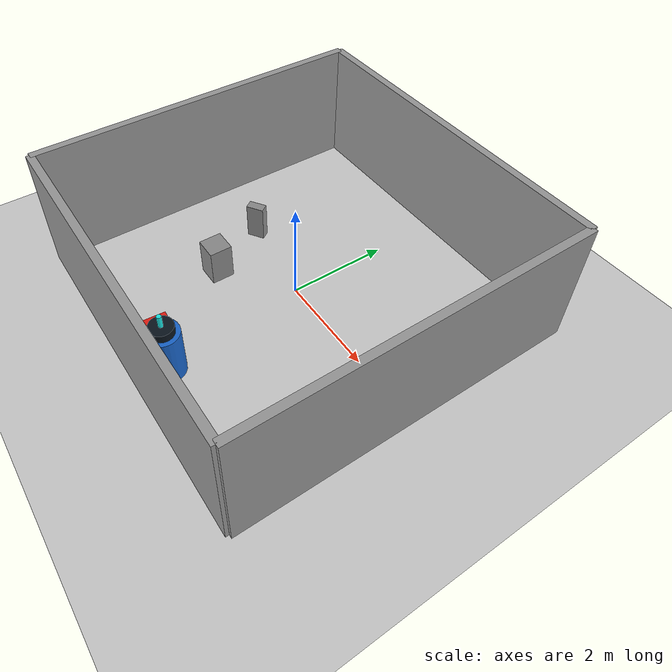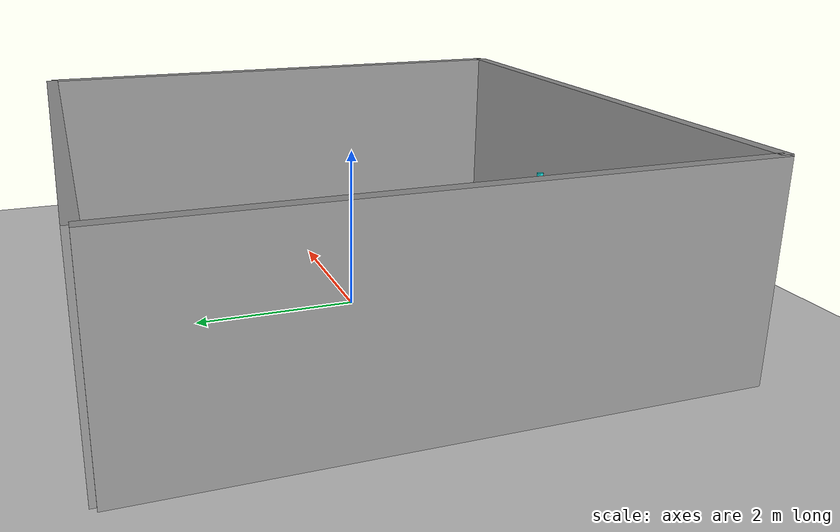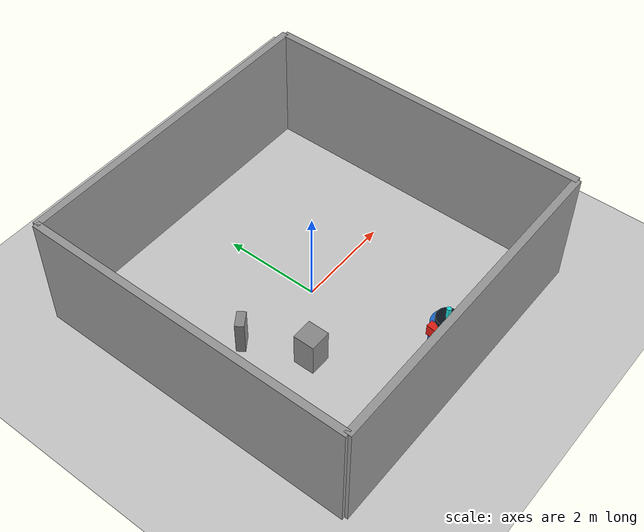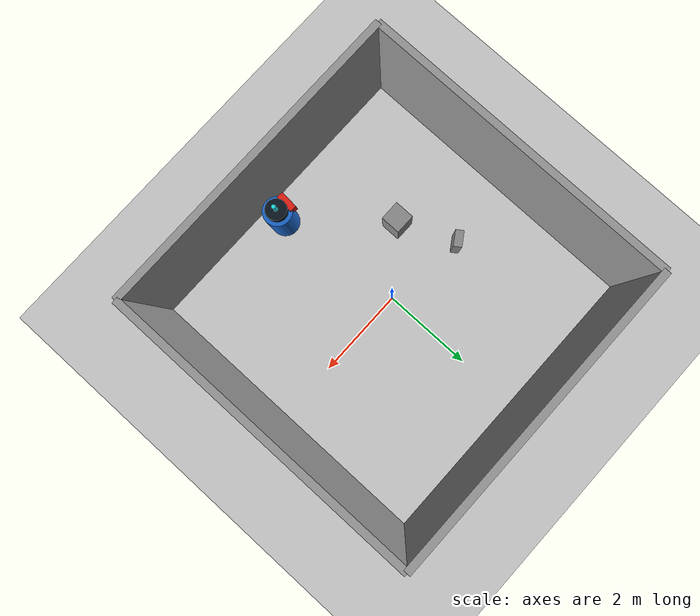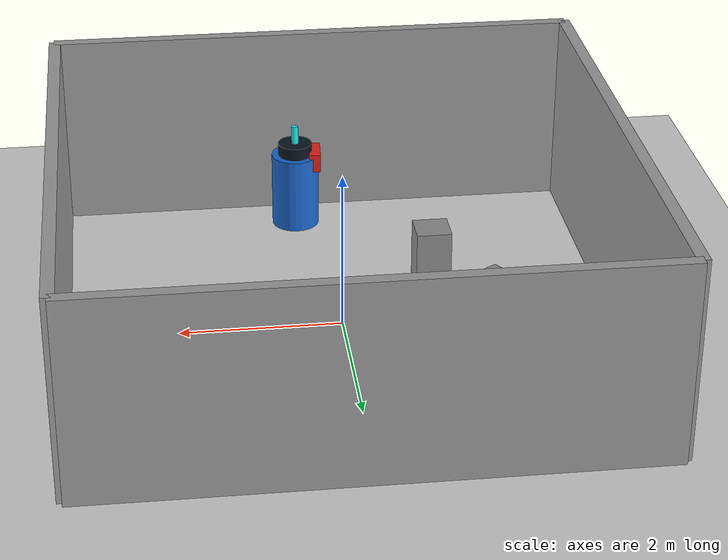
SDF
<sdf version="1.7">
 <world name="default">
  <plugin name="socnav_plugin" filename="libSocNavPlugin.so">
   <robot_name>robot</robot_name>
   <trajectory_file>/home/hunav_gz_classic_ws/SocNav3_trajectories/src6/000003823.json</trajectory_file>
   <human_slots>2</human_slots>
   <goal_angle_mesh>
    <angle_threshold>0.413672699353</angle_threshold>
    <uri>/home/hunav_gz_classic_ws/src/socnav_gazebo_reproducer/meshes/000003823_goal_angle_00.stl</uri>
   </goal_angle_mesh>
  </plugin>
  <light name="sun" type="directional">
   <pose>0 0 10 0 -0 0</pose>
   <diffuse>0.8 0.8 0.8 1</diffuse>
   <specular>0.2 0.2 0.2 1</specular>
   <attenuation>
    <range>1000</range>
    <constant>0.9</constant>
    <linear>0.01</linear>
    <quadratic>0.001</quadratic>
   </attenuation>
   <direction>-0.5 0.1 -0.9</direction>
   <spot><inner_angle>0</inner_angle><outer_angle>0</outer_angle><falloff>0</falloff></spot>
  </light>
  <model name="ground_plane">
   <static>1</static>
   <link name="link">
    <collision name="collision">
     <geometry><plane><normal>0 0 1</normal><size>100 100</size></plane></geometry>
     <surface><friction><ode><mu>100</mu><mu2>50</mu2></ode></friction></surface>
    </collision>
    <visual name="visual">
     <cast_shadows>0</cast_shadows>
     <geometry><plane><normal>0 0 1</normal><size>100 100</size></plane></geometry>
     <material>
      <script><uri>file://media/materials/scripts/kitchen.material</uri><name>Kitchen/CounterTop_H</name></script>
     </material>
    </visual>
   </link>
  </model>
  <gravity>0 0 -9.8</gravity>
  <magnetic_field>6e-06 2.3e-05 -4.2e-05</magnetic_field>
  <atmosphere type="adiabatic"/>
  <physics type="ode">
   <max_step_size>0.001</max_step_size>
   <real_time_factor>1</real_time_factor>
   <real_time_update_rate>1000</real_time_update_rate>
  </physics>
  <scene><ambient>0.4 0.4 0.4 1</ambient><background>0.7 0.7 0.7 1</background><shadows>1</shadows></scene>
  <audio><device>default</device></audio>
  <spherical_coordinates>
   <surface_model>EARTH_WGS84</surface_model>
   <latitude_deg>0</latitude_deg>
   <longitude_deg>0</longitude_deg>
   <elevation>0</elevation>
   <heading_deg>0</heading_deg>
  </spherical_coordinates>
  <model name="robot">
   <pose>0.3051416710043367 -2.808647199952879 0.5 0 0 3.065458366951793</pose>
   <link name="link">
    <collision name="collision">
     <geometry><cylinder><radius>0.30861134705676646</radius><length>1.0</length></cylinder></geometry>
    </collision>
    <visual name="visual">
     <geometry><cylinder><radius>0.30861134705676646</radius><length>1.0</length></cylinder></geometry>
     <material><ambient>0.1 0.4 0.8 1</ambient><diffuse>0.1 0.4 0.8 1</diffuse></material>
    </visual>
    <visual name="robot_top">
     <pose>0 0 0.58 0 0 0</pose>
     <geometry><cylinder><radius>0.22220016988087185</radius><length>0.16</length></cylinder></geometry>
     <material><ambient>0.04 0.08 0.12 1</ambient><diffuse>0.04 0.08 0.12 1</diffuse></material>
    </visual>
    <visual name="robot_front">
     <pose>0.2592335315276838 0 0.44 0 0 0</pose>
     <geometry><box><size>0.1481334465872479 0.3950225242326611 0.24</size></box></geometry>
     <material><ambient>0.9 0.12 0.08 1</ambient><diffuse>0.9 0.12 0.08 1</diffuse></material>
    </visual>
    <visual name="robot_sensor">
     <pose>0 0 0.78 0 0 0</pose>
     <geometry><cylinder><radius>0.04320558858794731</radius><length>0.24</length></cylinder></geometry>
     <material><ambient>0.1 0.9 0.9 1</ambient><diffuse>0.1 0.9 0.9 1</diffuse></material>
    </visual>
   </link>
  </model>
  <model name="static_object_0">
   <static>true</static>
   <pose>-1.7631426608107534 0.2347047719692583 0.375 0 0 -2.552753092743299</pose>
   <link name="link">
    <collision name="collision"><geometry><box><size>0.35 0.18 0.75</size></box></geometry></collision>
    <visual name="visual">
     <geometry><box><size>0.35 0.18 0.75</size></box></geometry>
     <material><ambient>0.55 0.55 0.55 1</ambient><diffuse>0.55 0.55 0.55 1</diffuse></material>
    </visual>
   </link>
  </model>
  <model name="static_object_2">
   <static>true</static>
   <pose>-1.2516878917623389 -0.9833464198679309 0.375 0 0 0</pose>
   <link name="link">
    <collision name="collision">
     <geometry><box><size>0.44145459373783097 0.44145459373783097 0.75</size></box></geometry>
    </collision>
    <visual name="visual">
     <geometry><box><size>0.44145459373783097 0.44145459373783097 0.75</size></box></geometry>
     <material><ambient>0.55 0.55 0.55 1</ambient><diffuse>0.55 0.55 0.55 1</diffuse></material>
    </visual>
   </link>
  </model>
  <model name="simple_world_test">
   <link name="Wall_0">
    <collision name="Wall_0_Collision">
     <geometry><box><size>6.76688402412948 0.15 2.5</size></box></geometry>
     <pose>0 0 1.25 0 -0 0</pose>
    </collision>
    <visual name="Wall_0_Visual">
     <pose>0 0 1.25 0 -0 0</pose>
     <geometry><box><size>6.76688402412948 0.15 2.5</size></box></geometry>
     <material>
      <script><uri>file://media/materials/scripts/gazebo.material</uri><name>Gazebo/Grey</name></script>
      <ambient>1 1 1 1</ambient>
     </material>
     <meta><layer>0</layer></meta>
    </visual>
    <pose>3.37344201206474 0.0 0 0 -0 -1.5707963267948966</pose>
   </link>
   <link name="Wall_1">
    <collision name="Wall_1_Collision">
     <geometry><box><size>6.76688402412948 0.15 2.5</size></box></geometry>
     <pose>0 0 1.25 0 -0 0</pose>
    </collision>
    <visual name="Wall_1_Visual">
     <pose>0 0 1.25 0 -0 0</pose>
     <geometry><box><size>6.76688402412948 0.15 2.5</size></box></geometry>
     <material>
      <script><uri>file://media/materials/scripts/gazebo.material</uri><name>Gazebo/Grey</name></script>
      <ambient>1 1 1 1</ambient>
     </material>
     <meta><layer>0</layer></meta>
    </visual>
    <pose>0.0 -3.37344201206474 0 0 -0 -3.141592653589793</pose>
   </link>
   <link name="Wall_2">
    <collision name="Wall_2_Collision">
     <geometry><box><size>6.76688402412948 0.15 2.5</size></box></geometry>
     <pose>0 0 1.25 0 -0 0</pose>
    </collision>
    <visual name="Wall_2_Visual">
     <pose>0 0 1.25 0 -0 0</pose>
     <geometry><box><size>6.76688402412948 0.15 2.5</size></box></geometry>
     <material>
      <script><uri>file://media/materials/scripts/gazebo.material</uri><name>Gazebo/Grey</name></script>
      <ambient>1 1 1 1</ambient>
     </material>
     <meta><layer>0</layer></meta>
    </visual>
    <pose>-3.37344201206474 0.0 0 0 -0 1.5707963267948966</pose>
   </link>
   <link name="Wall_3">
    <collision name="Wall_3_Collision">
     <geometry><box><size>6.76688402412948 0.15 2.5</size></box></geometry>
     <pose>0 0 1.25 0 -0 0</pose>
    </collision>
    <visual name="Wall_3_Visual">
     <pose>0 0 1.25 0 -0 0</pose>
     <geometry><box><size>6.76688402412948 0.15 2.5</size></box></geometry>
     <material>
      <script><uri>file://media/materials/scripts/gazebo.material</uri><name>Gazebo/Grey</name></script>
      <ambient>1 1 1 1</ambient>
     </material>
     <meta><layer>0</layer></meta>
    </visual>
    <pose>0.0 3.37344201206474 0 0 -0 0.0</pose>
   </link>
   <static>1</static>
  </model>
 </world>
</sdf>
